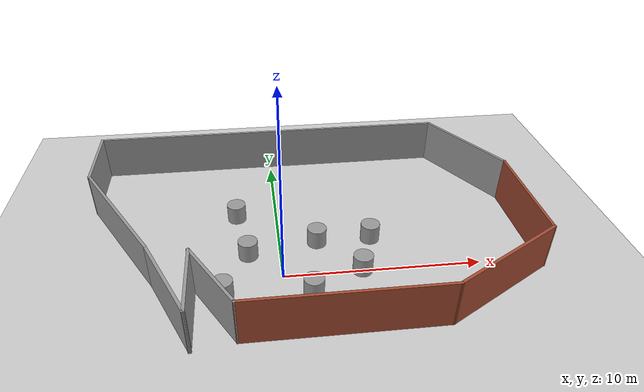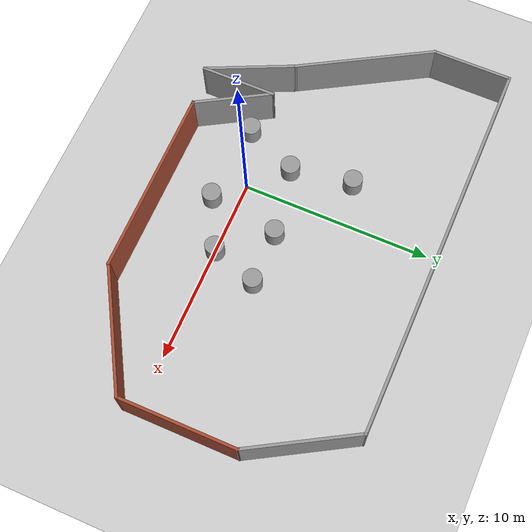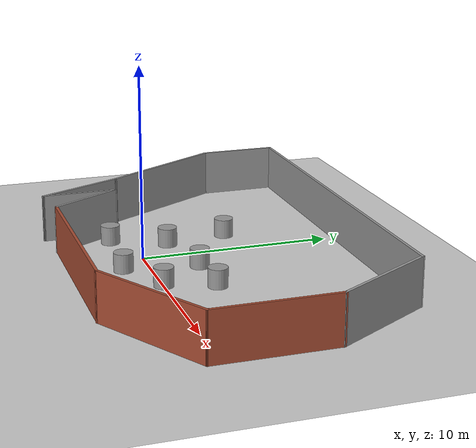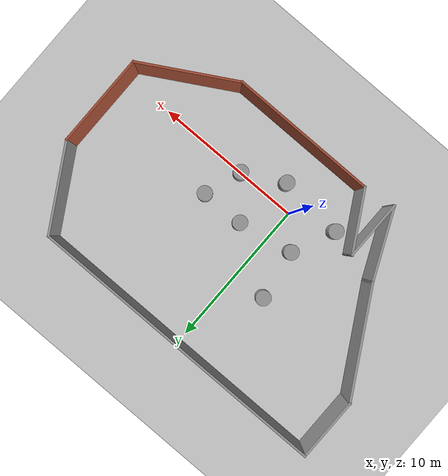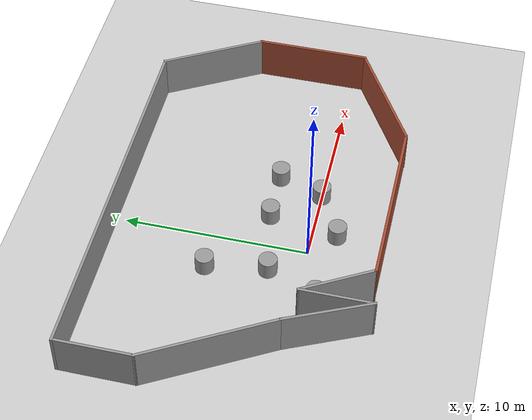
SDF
<sdf version="1.7">
 <world name="default">
  <light name="sun" type="directional">
   <pose>0 0 10 0 -0 0</pose>
   <diffuse>0.8 0.8 0.8 1</diffuse>
   <specular>0.2 0.2 0.2 1</specular>
   <attenuation>
    <range>1000</range>
    <constant>0.9</constant>
    <linear>0.01</linear>
    <quadratic>0.001</quadratic>
   </attenuation>
   <direction>-0.5 0.1 -0.9</direction>
   <spot><inner_angle>0</inner_angle><outer_angle>0</outer_angle><falloff>0</falloff></spot>
  </light>
  <model name="ground_plane">
   <static>1</static>
   <link name="link">
    <collision name="collision">
     <geometry><plane><normal>0 0 1</normal><size>100 100</size></plane></geometry>
     <surface>
      <contact><collide_bitmask>65535</collide_bitmask></contact>
      <friction><ode><mu>100</mu><mu2>50</mu2></ode></friction>
     </surface>
    </collision>
    <visual name="visual">
     <cast_shadows>0</cast_shadows>
     <geometry><plane><normal>0 0 1</normal><size>100 100</size></plane></geometry>
     <material>
      <script><uri>file://media/materials/scripts/gazebo.material</uri><name>Gazebo/Grey</name></script>
     </material>
    </visual>
   </link>
  </model>
  <gravity>0 0 -9.8</gravity>
  <magnetic_field>6e-06 2.3e-05 -4.2e-05</magnetic_field>
  <atmosphere type="adiabatic"/>
  <physics type="ode">
   <max_step_size>0.001</max_step_size>
   <real_time_factor>1</real_time_factor>
   <real_time_update_rate>1000</real_time_update_rate>
  </physics>
  <scene><ambient>0.4 0.4 0.4 1</ambient><background>0.7 0.7 0.7 1</background><shadows>1</shadows></scene>
  <audio><device>default</device></audio>
  <spherical_coordinates>
   <surface_model>EARTH_WGS84</surface_model>
   <latitude_deg>0</latitude_deg>
   <longitude_deg>0</longitude_deg>
   <elevation>0</elevation>
   <heading_deg>0</heading_deg>
  </spherical_coordinates>
  <model name="Untitled">
   <pose>1.53327 3.16424 0 0 -0 0</pose>
   <link name="Wall_0">
    <collision name="Wall_0_Collision">
     <geometry><box><size>4 0.15 2.5</size></box></geometry>
     <pose>0 0 1.25 0 -0 0</pose>
    </collision>
    <visual name="Wall_0_Visual">
     <pose>0 0 1.25 0 -0 0</pose>
     <geometry><box><size>4 0.15 2.5</size></box></geometry>
     <material>
      <script><uri>file://media/materials/scripts/gazebo.material</uri><name>Gazebo/Grey</name></script>
      <ambient>1 1 1 1</ambient>
     </material>
     <meta><layer>0</layer></meta>
    </visual>
    <pose>-5.85327 -5.45924 0 0 -0 1.5708</pose>
   </link>
   <link name="Wall_1">
    <collision name="Wall_1_Collision">
     <geometry><box><size>4.25 0.15 2.5</size></box></geometry>
     <pose>0 0 1.25 0 -0 0</pose>
    </collision>
    <visual name="Wall_1_Visual">
     <pose>0 0 1.25 0 -0 0</pose>
     <geometry><box><size>4.25 0.15 2.5</size></box></geometry>
     <material>
      <script><uri>file://media/materials/scripts/gazebo.material</uri><name>Gazebo/Grey</name></script>
      <ambient>1 1 1 1</ambient>
     </material>
     <meta><layer>0</layer></meta>
    </visual>
    <pose>-4.82827 -5.30959 0 0 -0 -1.0472</pose>
   </link>
   <link name="Wall_2">
    <collision name="Wall_2_Collision">
     <geometry><box><size>9.75 0.15 2.5</size></box></geometry>
     <pose>0 0 1.25 0 -0 0</pose>
    </collision>
    <visual name="Wall_2_Visual">
     <pose>0 0 1.25 0 -0 0</pose>
     <geometry><box><size>9.75 0.15 2.5</size></box></geometry>
     <material>
      <script><uri>file://media/materials/scripts/gazebo.material</uri><name>Gazebo/Bricks</name></script>
      <ambient>1 1 1 1</ambient>
     </material>
     <meta><layer>0</layer></meta>
    </visual>
    <pose>0.996732 -7.08494 0 0 -0 0</pose>
   </link>
   <link name="Wall_3">
    <collision name="Wall_3_Collision">
     <geometry><box><size>6.75 0.15 2.5</size></box></geometry>
     <pose>0 0 1.25 0 -0 0</pose>
    </collision>
    <visual name="Wall_3_Visual">
     <pose>0 0 1.25 0 -0 0</pose>
     <geometry><box><size>6.75 0.15 2.5</size></box></geometry>
     <material>
      <script><uri>file://media/materials/scripts/gazebo.material</uri><name>Gazebo/Bricks</name></script>
      <ambient>1 1 1 1</ambient>
     </material>
     <meta><layer>0</layer></meta>
    </visual>
    <pose>8.65462 -5.43494 0 0 -0 0.523599</pose>
   </link>
   <link name="Wall_4">
    <collision name="Wall_4_Collision">
     <geometry><box><size>6.25 0.15 2.5</size></box></geometry>
     <pose>0 0 1.25 0 -0 0</pose>
    </collision>
    <visual name="Wall_4_Visual">
     <pose>0 0 1.25 0 -0 0</pose>
     <geometry><box><size>6.25 0.15 2.5</size></box></geometry>
     <material>
      <script><uri>file://media/materials/scripts/gazebo.material</uri><name>Gazebo/Bricks</name></script>
      <ambient>1 1 1 1</ambient>
     </material>
     <meta><layer>0</layer></meta>
    </visual>
    <pose>11.5125 -0.734941 0 0 -0 1.5708</pose>
   </link>
   <link name="Wall_5">
    <collision name="Wall_5_Collision">
     <geometry><box><size>6 0.15 2.5</size></box></geometry>
     <pose>0 0 1.25 0 -0 0</pose>
    </collision>
    <visual name="Wall_5_Visual">
     <pose>0 0 1.25 0 -0 0</pose>
     <geometry><box><size>6 0.15 2.5</size></box></geometry>
     <material>
      <script><uri>file://media/materials/scripts/gazebo.material</uri><name>Gazebo/Grey</name></script>
      <ambient>1 1 1 1</ambient>
     </material>
     <meta><layer>0</layer></meta>
    </visual>
    <pose>10.05 4.84818 0 0 -0 2.0944</pose>
   </link>
   <link name="Wall_6">
    <collision name="Wall_6_Collision">
     <geometry><box><size>20.25 0.15 2.5</size></box></geometry>
     <pose>0 0 1.25 0 -0 0</pose>
    </collision>
    <visual name="Wall_6_Visual">
     <pose>0 0 1.25 0 -0 0</pose>
     <geometry><box><size>20.25 0.15 2.5</size></box></geometry>
     <material>
      <script><uri>file://media/materials/scripts/gazebo.material</uri><name>Gazebo/Grey</name></script>
      <ambient>1 1 1 1</ambient>
     </material>
     <meta><layer>0</layer></meta>
    </visual>
    <pose>-1.4625 7.38131 0 0 -0 3.14159</pose>
   </link>
   <link name="Wall_7">
    <collision name="Wall_7_Collision">
     <geometry><box><size>4.25 0.15 2.5</size></box></geometry>
     <pose>0 0 1.25 0 -0 0</pose>
    </collision>
    <visual name="Wall_7_Visual">
     <pose>0 0 1.25 0 -0 0</pose>
     <geometry><box><size>4.25 0.15 2.5</size></box></geometry>
     <material>
      <script><uri>file://media/materials/scripts/gazebo.material</uri><name>Gazebo/Grey</name></script>
      <ambient>1 1 1 1</ambient>
     </material>
     <meta><layer>0</layer></meta>
    </visual>
    <pose>-11.5125 5.33131 0 0 -0 -1.5708</pose>
   </link>
   <link name="Wall_8">
    <collision name="Wall_8_Collision">
     <geometry><box><size>7.5 0.15 2.5</size></box></geometry>
     <pose>0 0 1.25 0 -0 0</pose>
    </collision>
    <visual name="Wall_8_Visual">
     <pose>0 0 1.25 0 -0 0</pose>
     <geometry><box><size>7.5 0.15 2.5</size></box></geometry>
     <material>
      <script><uri>file://media/materials/scripts/gazebo.material</uri><name>Gazebo/Grey</name></script>
      <ambient>1 1 1 1</ambient>
     </material>
     <meta><layer>0</layer></meta>
    </visual>
    <pose>-9.675 0.098665 0 0 -0 -1.0472</pose>
   </link>
   <link name="Wall_9">
    <collision name="Wall_9_Collision">
     <geometry><box><size>4.88597 0.15 2.5</size></box></geometry>
     <pose>0 0 1.25 0 -0 0</pose>
    </collision>
    <visual name="Wall_9_Visual">
     <pose>0 0 1.25 0 -0 0</pose>
     <geometry><box><size>4.88597 0.15 2.5</size></box></geometry>
     <material>
      <script><uri>file://media/materials/scripts/gazebo.material</uri><name>Gazebo/Grey</name></script>
      <ambient>1 1 1 1</ambient>
     </material>
     <meta><layer>0</layer></meta>
    </visual>
    <pose>-6.84538 -5.23411 0 0 -0 -1.13848</pose>
   </link>
   <static>1</static>
  </model>
  <model name="unit_cylinder">
   <pose>-1.64305 1.77362 0.499998 3e-06 -4e-06 0</pose>
   <link name="link">
    <inertial>
     <mass>1</mass>
     <inertia><ixx>0.145833</ixx><ixy>0</ixy><ixz>0</ixz><iyy>0.145833</iyy><iyz>0</iyz><izz>0.125</izz></inertia>
    </inertial>
    <collision name="collision">
     <geometry><cylinder><radius>0.5</radius><length>1</length></cylinder></geometry>
    </collision>
    <visual name="visual">
     <geometry><cylinder><radius>0.5</radius><length>1</length></cylinder></geometry>
     <material>
      <script><name>Gazebo/Grey</name><uri>file://media/materials/scripts/gazebo.material</uri></script>
     </material>
    </visual>
   </link>
  </model>
  <model name="unit_cylinder_0">
   <pose>1.97234 2.45068 0.499992 -3e-06 4e-06 0</pose>
   <link name="link">
    <inertial>
     <mass>1</mass>
     <inertia><ixx>0.145833</ixx><ixy>0</ixy><ixz>0</ixz><iyy>0.145833</iyy><iyz>0</iyz><izz>0.125</izz></inertia>
    </inertial>
    <collision name="collision">
     <geometry><cylinder><radius>0.5</radius><length>1</length></cylinder></geometry>
    </collision>
    <visual name="visual">
     <geometry><cylinder><radius>0.5</radius><length>1</length></cylinder></geometry>
     <material>
      <script><name>Gazebo/Grey</name><uri>file://media/materials/scripts/gazebo.material</uri></script>
     </material>
    </visual>
   </link>
  </model>
  <model name="unit_cylinder_1">
   <pose>1.36864 -1.32634 0.499998 3e-06 4e-06 -0</pose>
   <link name="link">
    <inertial>
     <mass>1</mass>
     <inertia><ixx>0.145833</ixx><ixy>0</ixy><ixz>0</ixz><iyy>0.145833</iyy><iyz>0</iyz><izz>0.125</izz></inertia>
    </inertial>
    <collision name="collision">
     <geometry><cylinder><radius>0.5</radius><length>1</length></cylinder></geometry>
    </collision>
    <visual name="visual">
     <geometry><cylinder><radius>0.5</radius><length>1</length></cylinder></geometry>
     <material>
      <script><name>Gazebo/Grey</name><uri>file://media/materials/scripts/gazebo.material</uri></script>
     </material>
    </visual>
   </link>
  </model>
  <model name="unit_cylinder_2">
   <pose>-2.90586 -1.00873 0.499997 3e-06 4e-06 -0</pose>
   <link name="link">
    <inertial>
     <mass>1</mass>
     <inertia><ixx>0.145833</ixx><ixy>0</ixy><ixz>0</ixz><iyy>0.145833</iyy><iyz>0</iyz><izz>0.125</izz></inertia>
    </inertial>
    <collision name="collision">
     <geometry><cylinder><radius>0.5</radius><length>1</length></cylinder></geometry>
    </collision>
    <visual name="visual">
     <geometry><cylinder><radius>0.5</radius><length>1</length></cylinder></geometry>
     <material>
      <script><name>Gazebo/Grey</name><uri>file://media/materials/scripts/gazebo.material</uri></script>
     </material>
    </visual>
   </link>
  </model>
  <model name="unit_cylinder_3">
   <pose>-2.17092 5.05626 0.499997 3e-06 4e-06 -0</pose>
   <link name="link">
    <inertial>
     <mass>1</mass>
     <inertia><ixx>0.145833</ixx><ixy>0</ixy><ixz>0</ixz><iyy>0.145833</iyy><iyz>0</iyz><izz>0.125</izz></inertia>
    </inertial>
    <collision name="collision">
     <geometry><cylinder><radius>0.5</radius><length>1</length></cylinder></geometry>
    </collision>
    <visual name="visual">
     <geometry><cylinder><radius>0.5</radius><length>1</length></cylinder></geometry>
     <material>
      <script><name>Gazebo/Grey</name><uri>file://media/materials/scripts/gazebo.material</uri></script>
     </material>
    </visual>
   </link>
  </model>
  <model name="unit_cylinder_4">
   <pose>3.96747 0.032414 0.499993 -3e-06 -4e-06 -0</pose>
   <link name="link">
    <inertial>
     <mass>1</mass>
     <inertia><ixx>0.145833</ixx><ixy>0</ixy><ixz>0</ixz><iyy>0.145833</iyy><iyz>0</iyz><izz>0.125</izz></inertia>
    </inertial>
    <collision name="collision">
     <geometry><cylinder><radius>0.5</radius><length>1</length></cylinder></geometry>
    </collision>
    <visual name="visual">
     <geometry><cylinder><radius>0.5</radius><length>1</length></cylinder></geometry>
     <material>
      <script><name>Gazebo/Grey</name><uri>file://media/materials/scripts/gazebo.material</uri></script>
     </material>
    </visual>
   </link>
  </model>
  <model name="unit_cylinder_5">
   <pose>4.8104 2.49298 0.499997 3e-06 4e-06 -0</pose>
   <link name="link">
    <inertial>
     <mass>1</mass>
     <inertia><ixx>0.145833</ixx><ixy>0</ixy><ixz>0</ixz><iyy>0.145833</iyy><iyz>0</iyz><izz>0.125</izz></inertia>
    </inertial>
    <collision name="collision">
     <geometry><cylinder><radius>0.5</radius><length>1</length></cylinder></geometry>
    </collision>
    <visual name="visual">
     <geometry><cylinder><radius>0.5</radius><length>1</length></cylinder></geometry>
     <material>
      <script><name>Gazebo/Grey</name><uri>file://media/materials/scripts/gazebo.material</uri></script>
     </material>
    </visual>
   </link>
  </model>
 </world>
</sdf>
